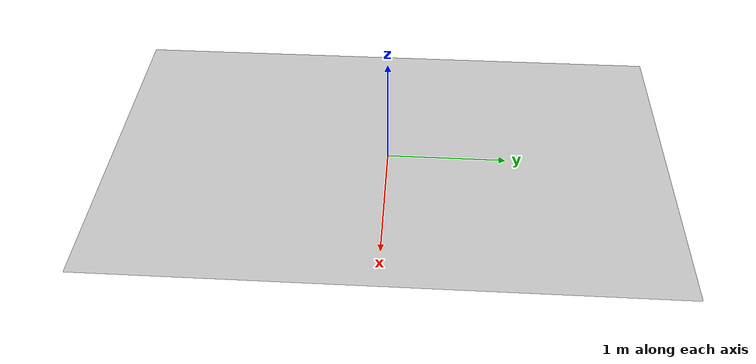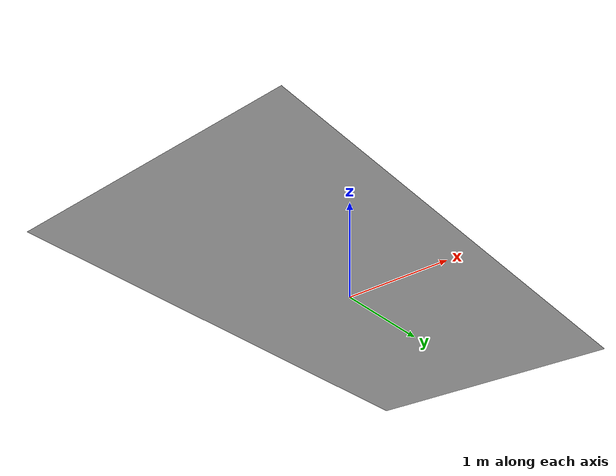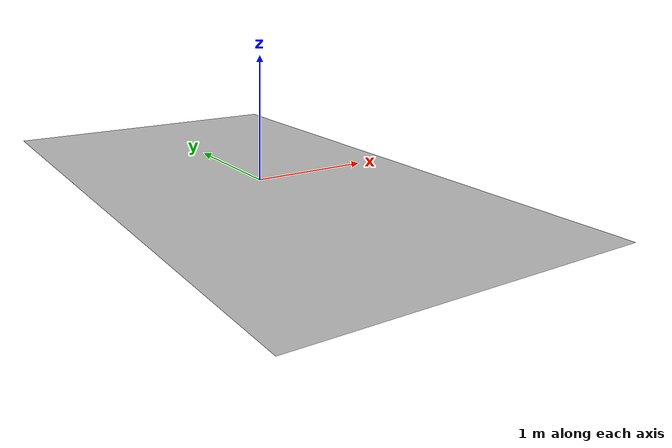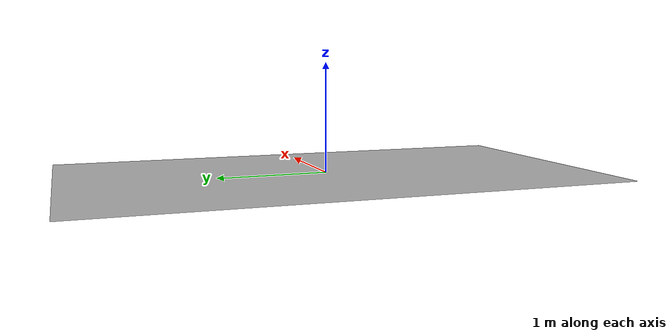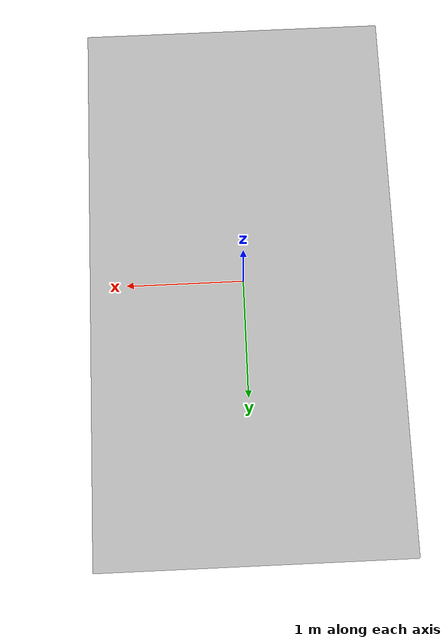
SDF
<?xml version='1.0'?>
<sdf version="1.3">

  <model name="CarMap">
    <pose> 0.0 0.0 0.0  0.0 0.0 0.0 </pose>
    <static>true</static>

    <link name="body">
      <inertial>
        <mass>1.0</mass>
        <inertia>
          <ixx>1</ixx>
          <ixy>0</ixy>
          <ixz>0</ixz>
          <iyy>1</iyy>
          <iyz>0</iyz>
          <izz>1</izz>
        </inertia>
      </inertial>

      <visual name="visual">
        <geometry>
          <mesh><uri>model://CarMap/meshes/CarMap.dae</uri>
          <scale>1 1 1</scale></mesh>
        </geometry>
        <material>
          <emissive> 0.70 0.70 0.70 0.70 </emissive>
        </material>
      </visual>

    </link>
  </model>
</sdf>
